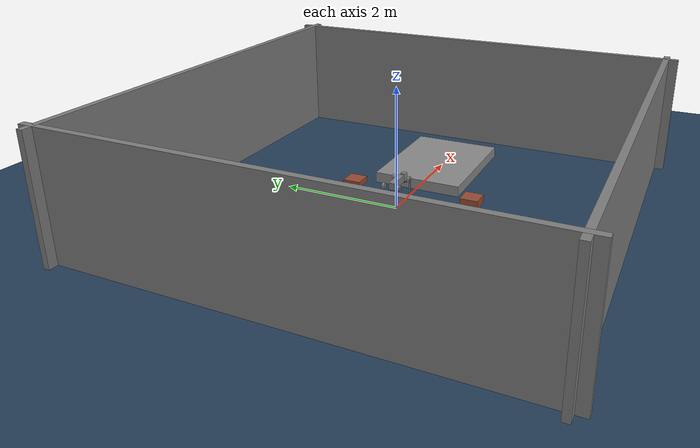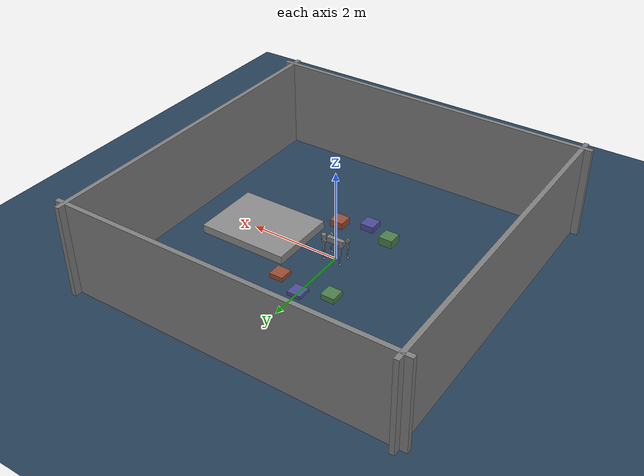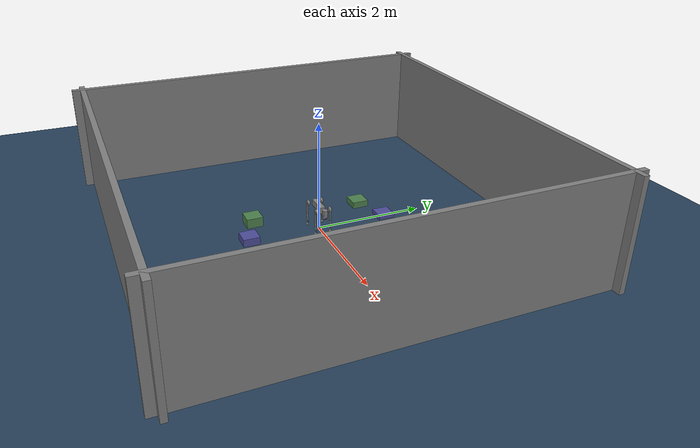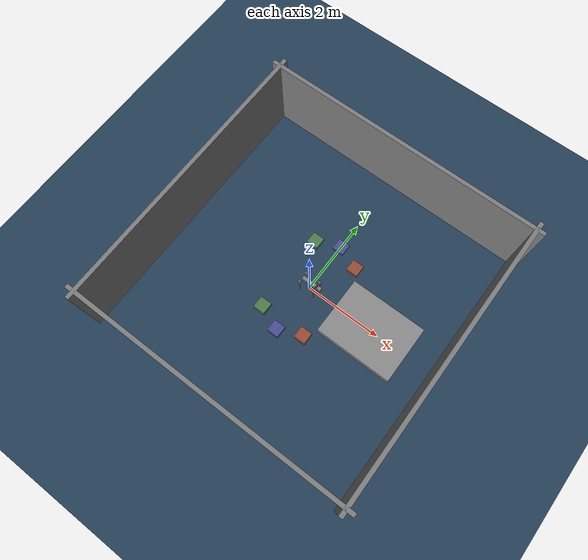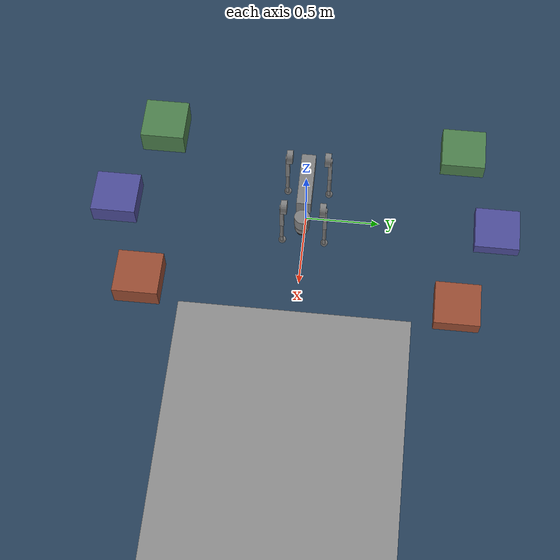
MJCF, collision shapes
<mujoco model="go2 scene (single step-up to cross, walled for stable LIO)">
  <include file="go2.xml"/>

  <statistic center="0 0 0.1" extent="0.8"/>

  <visual>
    <headlight diffuse="0.6 0.6 0.6" ambient="0.3 0.3 0.3" specular="0 0 0"/>
    <rgba haze="0.15 0.25 0.35 1"/>
    <global azimuth="-130" elevation="-20"/>
  </visual>

  <asset>
    <texture type="skybox" builtin="gradient" rgb1="0.3 0.5 0.7" rgb2="0 0 0" width="512" height="3072"/>
    <texture type="2d" name="groundplane" builtin="checker" mark="edge" rgb1="0.2 0.3 0.4" rgb2="0.1 0.2 0.3"
      markrgb="0.8 0.8 0.8" width="300" height="300"/>
    <material name="groundplane" texture="groundplane" texuniform="true" texrepeat="5 5" reflectance="0.2"/>
  </asset>

  <worldbody>
    <light pos="0 0 1.5" dir="0 0 -1" directional="true"/>
    <geom name="floor" size="0 0 0.05" type="plane" material="groundplane"/>

    <geom pos="1.8 0 0.09" type="box" size="1.0 0.75 0.09" rgba="0.55 0.55 0.55 1"/>

    <!-- Low near-field boxes off to the sides (|y|>=0.9, clear of the step's 1.5m
         width), same idea as scene_stair_climb_eval.xml. -->
    <geom pos="0.6 1.05 0.05" type="box" size="0.15 0.15 0.05" rgba="0.6 0.3 0.2 1"/>
    <geom pos="0.6 -1.05 0.075" type="box" size="0.15 0.15 0.075" rgba="0.6 0.3 0.2 1"/>
    <geom pos="-0.6 1.05 0.06" type="box" size="0.15 0.15 0.06" rgba="0.3 0.5 0.3 1"/>
    <geom pos="-0.6 -1.05 0.09" type="box" size="0.15 0.15 0.09" rgba="0.3 0.5 0.3 1"/>
    <geom pos="0 1.3 0.04" type="box" size="0.15 0.15 0.04" rgba="0.3 0.3 0.6 1"/>
    <geom pos="0 -1.3 0.07" type="box" size="0.15 0.15 0.07" rgba="0.3 0.3 0.6 1"/>

    <!-- Same taller/farther walls that stabilized stationary LIO in
         scene_cluttered_eval.xml (2m tall, 3m out). -->
    <geom pos="3.5 0 1.0" type="box" size="0.05 3.7 1.0" rgba="0.5 0.5 0.5 1"/>
    <geom pos="-3.5 0 1.0" type="box" size="0.05 3.7 1.0" rgba="0.5 0.5 0.5 1"/>
    <geom pos="0 3.5 1.0" type="box" size="3.7 0.05 1.0" rgba="0.5 0.5 0.5 1"/>
    <geom pos="0 -3.5 1.0" type="box" size="3.7 0.05 1.0" rgba="0.5 0.5 0.5 1"/>
  </worldbody>
</mujoco>

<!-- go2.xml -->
<mujoco model="go2">
  <compiler angle="radian" meshdir="assets" autolimits="true" />

  <option cone="elliptic" impratio="100" />

  <default>
    <default class="go2">
      <geom friction="0.4" margin="0.001" condim="1"/>
      <joint axis="0 1 0" damping="0.1" armature="0.01" frictionloss="0.2"/>
      <motor ctrlrange="-23.7 23.7"/>
      <default class="abduction">
        <joint axis="1 0 0" range="-1.0472 1.0472"/>
      </default>
      <default class="hip">
        <default class="front_hip">
          <joint range="-1.5708 3.4907"/>
        </default>
        <default class="back_hip">
          <joint range="-0.5236 4.5379"/>
        </default>
      </default>
      <default class="knee">
        <joint range="-2.7227 -0.83776"/>
        <motor ctrlrange="-45.43 45.43"/>
      </default>
      <default class="visual">
        <geom type="mesh" contype="0" conaffinity="0" group="2"/>
      </default>
      <default class="collision">
        <geom group="3"/>
        <default class="foot">
          <geom size="0.022" pos="-0.002 0 -0.213" priority="1" condim="6"
            friction="0.4 0.02 0.01"/>
        </default>
      </default>
    </default>
  </default>

  <asset>
    <material name="metal" rgba=".9 .95 .95 1" />
    <material name="black" rgba="0 0 0 1" />
    <material name="white" rgba="1 1 1 1" />
    <material name="gray" rgba="0.671705 0.692426 0.774270 1" />

    <mesh name="mid360_fov" file="mid360_fov.stl" scale="0.001 0.001 0.001" />

    <mesh file="base_0.obj" />
    <mesh file="base_1.obj" />
    <mesh file="base_2.obj" />
    <mesh file="base_3.obj" />
    <mesh file="base_4.obj" />
    <mesh file="hip_0.obj" />
    <mesh file="hip_1.obj" />
    <mesh file="thigh_0.obj" />
    <mesh file="thigh_1.obj" />
    <mesh file="thigh_mirror_0.obj" />
    <mesh file="thigh_mirror_1.obj" />
    <mesh file="calf_0.obj" />
    <mesh file="calf_1.obj" />
    <mesh file="calf_mirror_0.obj" />
    <mesh file="calf_mirror_1.obj" />
    <mesh file="foot.obj" />
  </asset>

  <worldbody>
    <body name="base_link" pos="0 0 0.445" childclass="go2">
      <inertial pos="0.021112 0 -0.005366" quat="-0.000543471 0.713435 -0.00173769 0.700719"
        mass="6.921"
        diaginertia="0.107027 0.0980771 0.0244531" />
      <freejoint />
      <geom mesh="base_0" material="black" class="visual" />
      <geom mesh="base_1" material="black" class="visual" />
      <geom mesh="base_2" material="black" class="visual" />
      <geom mesh="base_3" material="white" class="visual" />
      <geom mesh="base_4" material="gray" class="visual" />
      <geom size="0.1881 0.04675 0.057" type="box" class="collision" />
      <geom size="0.05 0.045" pos="0.285 0 0.01" type="cylinder" class="collision" />
      <geom size="0.047" pos="0.293 0 -0.06" class="collision" />
      <site name="imu" pos="-0.02557 0 0.04232" />
      <geom name="mid360_visual" type="cylinder" size="0.033 0.033" pos="0.295 0.0 -0.075"
        rgba="0.15 0.15 0.15 1" contype="0" conaffinity="0" group="2" />
      <site name="livox_mid360" pos="0.295 0.0 -0.075" quat="0 1 0 0"
        size="0.01" rgba="1 0 0 1" group="5" />
      <body name="FL_hip" pos="0.1934 0.0465 0">
        <inertial pos="-0.0054 0.00194 -0.000105" quat="0.497014 0.499245 0.505462 0.498237"
          mass="0.678"
          diaginertia="0.00088403 0.000596003 0.000479967" />
        <joint name="FL_hip_joint" class="abduction" />
        <geom mesh="hip_0" material="metal" class="visual" />
        <geom mesh="hip_1" material="gray" class="visual" />
        <geom size="0.046 0.02" pos="0 0.08 0" quat="1 1 0 0" type="cylinder" class="collision" />
        <body name="FL_thigh" pos="0 0.0955 0">
          <inertial pos="-0.00374 -0.0223 -0.0327" quat="0.829533 0.0847635 -0.0200632 0.551623"
            mass="1.152"
            diaginertia="0.00594973 0.00584149 0.000878787" />
          <joint name="FL_thigh_joint" class="front_hip" />
          <geom mesh="thigh_0" material="metal" class="visual" />
          <geom mesh="thigh_1" material="gray" class="visual" />
          <geom size="0.1065 0.01225 0.017" pos="0 0 -0.1065" quat="0.707107 0 0.707107 0"
            type="box" class="collision" />
          <body name="FL_calf" pos="0 0 -0.213">
            <inertial pos="0.00629595 -0.000622121 -0.141417"
              quat="0.710672 0.00154099 -0.00450087 0.703508"
              mass="0.241352" diaginertia="0.0014901 0.00146356 5.31397e-05" />
            <joint name="FL_calf_joint" class="knee" />
            <geom mesh="calf_0" material="gray" class="visual" />
            <geom mesh="calf_1" material="black" class="visual" />
            <geom size="0.012 0.06" pos="0.008 0 -0.06" quat="0.994493 0 -0.104807 0"
              type="cylinder" class="collision" />
            <geom size="0.011 0.0325" pos="0.02 0 -0.148" quat="0.999688 0 0.0249974 0"
              type="cylinder" class="collision" />
            <geom pos="0 0 -0.213" mesh="foot" class="visual" material="black" />
            <geom name="FL" class="foot" />
            <site name="FL_foot_site" pos="-0.002 0 -0.213" size="0.025" />
            <body name="FL_foot" pos="0 0 -0.213" />
          </body>
        </body>
      </body>
      <body name="FR_hip" pos="0.1934 -0.0465 0">
        <inertial pos="-0.0054 -0.00194 -0.000105" quat="0.498237 0.505462 0.499245 0.497014"
          mass="0.678"
          diaginertia="0.00088403 0.000596003 0.000479967" />
        <joint name="FR_hip_joint" class="abduction" />
        <geom mesh="hip_0" material="metal" class="visual" quat="4.63268e-05 1 0 0" />
        <geom mesh="hip_1" material="gray" class="visual" quat="4.63268e-05 1 0 0" />
        <geom size="0.046 0.02" pos="0 -0.08 0" quat="0.707107 0.707107 0 0" type="cylinder"
          class="collision" />
        <body name="FR_thigh" pos="0 -0.0955 0">
          <inertial pos="-0.00374 0.0223 -0.0327" quat="0.551623 -0.0200632 0.0847635 0.829533"
            mass="1.152"
            diaginertia="0.00594973 0.00584149 0.000878787" />
          <joint name="FR_thigh_joint" class="front_hip" />
          <geom mesh="thigh_mirror_0" material="metal" class="visual" />
          <geom mesh="thigh_mirror_1" material="gray" class="visual" />
          <geom size="0.1065 0.01225 0.017" pos="0 0 -0.1065" quat="0.707107 0 0.707107 0"
            type="box" class="collision" />
          <body name="FR_calf" pos="0 0 -0.213">
            <inertial pos="0.00629595 0.000622121 -0.141417"
              quat="0.703508 -0.00450087 0.00154099 0.710672"
              mass="0.241352" diaginertia="0.0014901 0.00146356 5.31397e-05" />
            <joint name="FR_calf_joint" class="knee" />
            <geom mesh="calf_mirror_0" material="gray" class="visual" />
            <geom mesh="calf_mirror_1" material="black" class="visual" />
            <geom size="0.013 0.06" pos="0.01 0 -0.06" quat="0.995004 0 -0.0998334 0"
              type="cylinder" class="collision" />
            <geom size="0.011 0.0325" pos="0.02 0 -0.148" quat="0.999688 0 0.0249974 0"
              type="cylinder" class="collision" />
            <geom pos="0 0 -0.213" mesh="foot" class="visual" material="black" />
            <geom name="FR" class="foot" />
            <site name="FR_foot_site" pos="-0.002 0 -0.213" size="0.025" />
            <body name="FR_foot" pos="0 0 -0.213" />
          </body>
        </body>
      </body>
      <body name="RL_hip" pos="-0.1934 0.0465 0">
        <inertial pos="0.0054 0.00194 -0.000105" quat="0.505462 0.498237 0.497014 0.499245"
          mass="0.678"
          diaginertia="0.00088403 0.000596003 0.000479967" />
        <joint name="RL_hip_joint" class="abduction" />
        <geom mesh="hip_0" material="metal" class="visual" quat="4.63268e-05 0 1 0" />
        <geom mesh="hip_1" material="gray" class="visual" quat="4.63268e-05 0 1 0" />
        <geom size="0.046 0.02" pos="0 0.08 0" quat="0.707107 0.707107 0 0" type="cylinder"
          class="collision" />
        <body name="RL_thigh" pos="0 0.0955 0">
          <inertial pos="-0.00374 -0.0223 -0.0327" quat="0.829533 0.0847635 -0.0200632 0.551623"
            mass="1.152"
            diaginertia="0.00594973 0.00584149 0.000878787" />
          <joint name="RL_thigh_joint" class="back_hip" />
          <geom mesh="thigh_0" material="metal" class="visual" />
          <geom mesh="thigh_1" material="gray" class="visual" />
          <geom size="0.1065 0.01225 0.017" pos="0 0 -0.1065" quat="0.707107 0 0.707107 0"
            type="box" class="collision" />
          <body name="RL_calf" pos="0 0 -0.213">
            <inertial pos="0.00629595 -0.000622121 -0.141417"
              quat="0.710672 0.00154099 -0.00450087 0.703508"
              mass="0.241352" diaginertia="0.0014901 0.00146356 5.31397e-05" />
            <joint name="RL_calf_joint" class="knee" />
            <geom mesh="calf_0" material="gray" class="visual" />
            <geom mesh="calf_1" material="black" class="visual" />
            <geom size="0.013 0.06" pos="0.01 0 -0.06" quat="0.995004 0 -0.0998334 0"
              type="cylinder" class="collision" />
            <geom size="0.011 0.0325" pos="0.02 0 -0.148" quat="0.999688 0 0.0249974 0"
              type="cylinder" class="collision" />
            <geom pos="0 0 -0.213" mesh="foot" class="visual" material="black" />
            <geom name="RL" class="foot" />
            <site name="RL_foot_site" pos="-0.002 0 -0.213" size="0.025" />
            <body name="RL_foot" pos="0 0 -0.213" />
          </body>
        </body>
      </body>
      <body name="RR_hip" pos="-0.1934 -0.0465 0">
        <inertial pos="0.0054 -0.00194 -0.000105" quat="0.499245 0.497014 0.498237 0.505462"
          mass="0.678"
          diaginertia="0.00088403 0.000596003 0.000479967" />
        <joint name="RR_hip_joint" class="abduction" />
        <geom mesh="hip_0" material="metal" class="visual"
          quat="2.14617e-09 4.63268e-05 4.63268e-05 -1" />
        <geom mesh="hip_1" material="gray" class="visual"
          quat="2.14617e-09 4.63268e-05 4.63268e-05 -1" />
        <geom size="0.046 0.02" pos="0 -0.08 0" quat="0.707107 0.707107 0 0" type="cylinder"
          class="collision" />
        <body name="RR_thigh" pos="0 -0.0955 0">
          <inertial pos="-0.00374 0.0223 -0.0327" quat="0.551623 -0.0200632 0.0847635 0.829533"
            mass="1.152"
            diaginertia="0.00594973 0.00584149 0.000878787" />
          <joint name="RR_thigh_joint" class="back_hip" />
          <geom mesh="thigh_mirror_0" material="metal" class="visual" />
          <geom mesh="thigh_mirror_1" material="gray" class="visual" />
          <geom size="0.1065 0.01225 0.017" pos="0 0 -0.1065" quat="0.707107 0 0.707107 0"
            type="box" class="collision" />
          <body name="RR_calf" pos="0 0 -0.213">
            <inertial pos="0.00629595 0.000622121 -0.141417"
              quat="0.703508 -0.00450087 0.00154099 0.710672"
              mass="0.241352" diaginertia="0.0014901 0.00146356 5.31397e-05" />
            <joint name="RR_calf_joint" class="knee" />
            <geom mesh="calf_mirror_0" material="gray" class="visual" />
            <geom mesh="calf_mirror_1" material="black" class="visual" />
            <geom size="0.013 0.06" pos="0.01 0 -0.06" quat="0.995004 0 -0.0998334 0"
              type="cylinder" class="collision" />
            <geom size="0.011 0.0325" pos="0.02 0 -0.148" quat="0.999688 0 0.0249974 0"
              type="cylinder" class="collision" />
            <geom pos="0 0 -0.213" mesh="foot" class="visual" material="black" />
            <geom name="RR" class="foot" />
            <site name="RR_foot_site" pos="-0.002 0 -0.213" size="0.025" />
            <body name="RR_foot" pos="0 0 -0.213" />
          </body>
        </body>
      </body>
    </body>
  </worldbody>

  <actuator>
    <motor class="abduction" name="FR_hip" joint="FR_hip_joint" />
    <motor class="hip" name="FR_thigh" joint="FR_thigh_joint" />
    <motor class="knee" name="FR_calf" joint="FR_calf_joint" />
    <motor class="abduction" name="FL_hip" joint="FL_hip_joint" />
    <motor class="hip" name="FL_thigh" joint="FL_thigh_joint" />
    <motor class="knee" name="FL_calf" joint="FL_calf_joint" />
    <motor class="abduction" name="RR_hip" joint="RR_hip_joint" />
    <motor class="hip" name="RR_thigh" joint="RR_thigh_joint" />
    <motor class="knee" name="RR_calf" joint="RR_calf_joint" />
    <motor class="abduction" name="RL_hip" joint="RL_hip_joint" />
    <motor class="hip" name="RL_thigh" joint="RL_thigh_joint" />
    <motor class="knee" name="RL_calf" joint="RL_calf_joint" />
  </actuator>

  <sensor>
    <jointpos name="FR_hip_pos" joint="FR_hip_joint" />
    <jointpos name="FR_thigh_pos" joint="FR_thigh_joint" />
    <jointpos name="FR_calf_pos" joint="FR_calf_joint" />
    <jointpos name="FL_hip_pos" joint="FL_hip_joint" />
    <jointpos name="FL_thigh_pos" joint="FL_thigh_joint" />
    <jointpos name="FL_calf_pos" joint="FL_calf_joint" />
    <jointpos name="RR_hip_pos" joint="RR_hip_joint" />
    <jointpos name="RR_thigh_pos" joint="RR_thigh_joint" />
    <jointpos name="RR_calf_pos" joint="RR_calf_joint" />
    <jointpos name="RL_hip_pos" joint="RL_hip_joint" />
    <jointpos name="RL_thigh_pos" joint="RL_thigh_joint" />
    <jointpos name="RL_calf_pos" joint="RL_calf_joint" />

    <jointvel name="FR_hip_vel" joint="FR_hip_joint" />
    <jointvel name="FR_thigh_vel" joint="FR_thigh_joint" />
    <jointvel name="FR_calf_vel" joint="FR_calf_joint" />
    <jointvel name="FL_hip_vel" joint="FL_hip_joint" />
    <jointvel name="FL_thigh_vel" joint="FL_thigh_joint" />
    <jointvel name="FL_calf_vel" joint="FL_calf_joint" />
    <jointvel name="RR_hip_vel" joint="RR_hip_joint" />
    <jointvel name="RR_thigh_vel" joint="RR_thigh_joint" />
    <jointvel name="RR_calf_vel" joint="RR_calf_joint" />
    <jointvel name="RL_hip_vel" joint="RL_hip_joint" />
    <jointvel name="RL_thigh_vel" joint="RL_thigh_joint" />
    <jointvel name="RL_calf_vel" joint="RL_calf_joint" />

    <jointactuatorfrc name="FR_hip_torque" joint="FR_hip_joint" noise="0.01" />
    <jointactuatorfrc name="FR_thigh_torque" joint="FR_thigh_joint" noise="0.01" />
    <jointactuatorfrc name="FR_calf_torque" joint="FR_calf_joint" noise="0.01" />
    <jointactuatorfrc name="FL_hip_torque" joint="FL_hip_joint" noise="0.01" />
    <jointactuatorfrc name="FL_thigh_torque" joint="FL_thigh_joint" noise="0.01" />
    <jointactuatorfrc name="FL_calf_torque" joint="FL_calf_joint" noise="0.01" />
    <jointactuatorfrc name="RR_hip_torque" joint="RR_hip_joint" noise="0.01" />
    <jointactuatorfrc name="RR_thigh_torque" joint="RR_thigh_joint" noise="0.01" />
    <jointactuatorfrc name="RR_calf_torque" joint="RR_calf_joint" noise="0.01" />
    <jointactuatorfrc name="RL_hip_torque" joint="RL_hip_joint" noise="0.01" />
    <jointactuatorfrc name="RL_thigh_torque" joint="RL_thigh_joint" noise="0.01" />
    <jointactuatorfrc name="RL_calf_torque" joint="RL_calf_joint" noise="0.01" />

    <framequat name="imu_quat" objtype="site" objname="imu" />
    <gyro name="imu_gyro" site="imu" />
    <accelerometer name="imu_acc" site="imu" />

    <framepos name="frame_pos" objtype="site" objname="imu" />
    <framelinvel name="frame_vel" objtype="site" objname="imu" />

    <framequat name="mid360_imu_quat" objtype="site" objname="livox_mid360" />
    <gyro name="mid360_imu_gyro" site="livox_mid360" />
    <accelerometer name="mid360_imu_acc" site="livox_mid360" />

    <touch name="FR_foot_force" site="FR_foot_site" />
    <touch name="FL_foot_force" site="FL_foot_site" />
    <touch name="RR_foot_force" site="RR_foot_site" />
    <touch name="RL_foot_force" site="RL_foot_site" />
  </sensor>

  <keyframe>
    <key name="home" qpos="0 0 0.27 1 0 0 0 0 0.9 -1.8 0 0.9 -1.8 0 0.9 -1.8 0 0.9 -1.8"
      ctrl="0 0.9 -1.8 0 0.9 -1.8 0 0.9 -1.8 0 0.9 -1.8" />
  </keyframe>
</mujoco>
